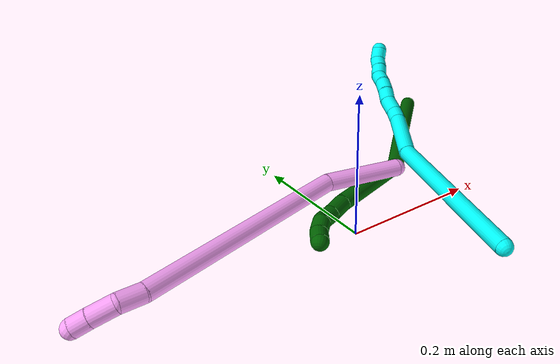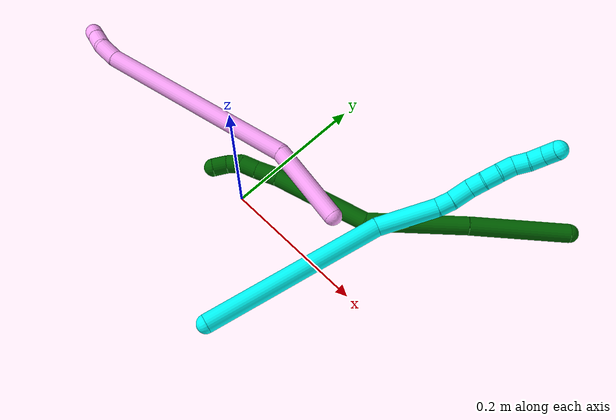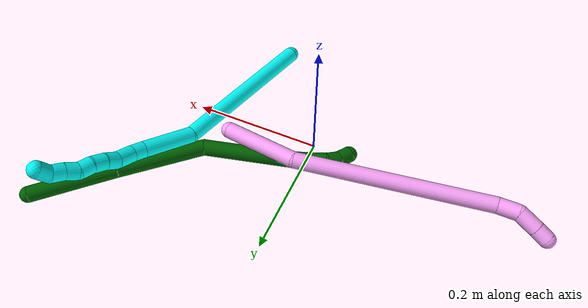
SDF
<sdf version="1.7">
 <world name="default">
  <model name="3">
   <static>0</static>
   <link name="3">
    <collision name="collision-cylinder-e_1_1_4">
     <pose>0.001699 0.014832 0.123157 -0.119851 0.013694 -0.000822</pose>
     <geometry><cylinder><radius>0.0125</radius><length>0.248117</length></cylinder></geometry>
     <surface>
      <friction><ode><mu>1.16</mu><mu2>1.16</mu2><slip1>0</slip1><slip2>0</slip2></ode></friction>
      <contact><ode><kp>1e+06</kp><kd>1</kd><max_vel>0</max_vel><min_depth>0.001</min_depth></ode></contact>
     </surface>
    </collision>
    <visual name="visual-cylinder-e_1_1_4">
     <pose>0.001699 0.014832 0.123157 -0.119851 0.013694 -0.000822</pose>
     <geometry><cylinder><radius>0.0125</radius><length>0.248117</length></cylinder></geometry>
     <material><ambient>0.003922 1 0.996078 1</ambient></material>
    </visual>
    <collision name="collision-cylinder-e_2_4_5">
     <pose>0.009093 0.021577 0.286051 0.200741 0.139539 0.014075</pose>
     <geometry><cylinder><radius>0.0125</radius><length>0.0819</length></cylinder></geometry>
     <surface>
      <friction><ode><mu>1.16</mu><mu2>1.16</mu2><slip1>0</slip1><slip2>0</slip2></ode></friction>
      <contact><ode><kp>1e+06</kp><kd>1</kd><max_vel>0</max_vel><min_depth>0.001</min_depth></ode></contact>
     </surface>
    </collision>
    <visual name="visual-cylinder-e_2_4_5">
     <pose>0.009093 0.021577 0.286051 0.200741 0.139539 0.014075</pose>
     <geometry><cylinder><radius>0.0125</radius><length>0.0819</length></cylinder></geometry>
     <material><ambient>0.003922 1 0.996078 1</ambient></material>
    </visual>
    <collision name="collision-cylinder-e_3_5_6">
     <pose>0.014687 0.011601 0.335737 0.187747 -0.010026 -0.000944</pose>
     <geometry><cylinder><radius>0.0125</radius><length>0.020253</length></cylinder></geometry>
     <surface>
      <friction><ode><mu>1.16</mu><mu2>1.16</mu2><slip1>0</slip1><slip2>0</slip2></ode></friction>
      <contact><ode><kp>1e+06</kp><kd>1</kd><max_vel>0</max_vel><min_depth>0.001</min_depth></ode></contact>
     </surface>
    </collision>
    <visual name="visual-cylinder-e_3_5_6">
     <pose>0.014687 0.011601 0.335737 0.187747 -0.010026 -0.000944</pose>
     <geometry><cylinder><radius>0.0125</radius><length>0.020253</length></cylinder></geometry>
     <material><ambient>0.003922 1 0.996078 1</ambient></material>
    </visual>
    <collision name="collision-cylinder-e_4_6_7">
     <pose>0.01268 0.007829 0.359215 0.138232 -0.138585 -0.009609</pose>
     <geometry><cylinder><radius>0.0125</radius><length>0.027586</length></cylinder></geometry>
     <surface>
      <friction><ode><mu>1.16</mu><mu2>1.16</mu2><slip1>0</slip1><slip2>0</slip2></ode></friction>
      <contact><ode><kp>1e+06</kp><kd>1</kd><max_vel>0</max_vel><min_depth>0.001</min_depth></ode></contact>
     </surface>
    </collision>
    <visual name="visual-cylinder-e_4_6_7">
     <pose>0.01268 0.007829 0.359215 0.138232 -0.138585 -0.009609</pose>
     <geometry><cylinder><radius>0.0125</radius><length>0.027586</length></cylinder></geometry>
     <material><ambient>0.003922 1 0.996078 1</ambient></material>
    </visual>
    <collision name="collision-cylinder-e_5_7_8">
     <pose>0.009633 0.001834 0.382022 0.417341 -0.112095 -0.02376</pose>
     <geometry><cylinder><radius>0.0125</radius><length>0.020423</length></cylinder></geometry>
     <surface>
      <friction><ode><mu>1.16</mu><mu2>1.16</mu2><slip1>0</slip1><slip2>0</slip2></ode></friction>
      <contact><ode><kp>1e+06</kp><kd>1</kd><max_vel>0</max_vel><min_depth>0.001</min_depth></ode></contact>
     </surface>
    </collision>
    <visual name="visual-cylinder-e_5_7_8">
     <pose>0.009633 0.001834 0.382022 0.417341 -0.112095 -0.02376</pose>
     <geometry><cylinder><radius>0.0125</radius><length>0.020423</length></cylinder></geometry>
     <material><ambient>0.003922 1 0.996078 1</ambient></material>
    </visual>
    <collision name="collision-cylinder-e_6_8_9">
     <pose>0.00785 -0.005087 0.401453 0.269768 -0.060691 -0.008239</pose>
     <geometry><cylinder><radius>0.0125</radius><length>0.02111</length></cylinder></geometry>
     <surface>
      <friction><ode><mu>1.16</mu><mu2>1.16</mu2><slip1>0</slip1><slip2>0</slip2></ode></friction>
      <contact><ode><kp>1e+06</kp><kd>1</kd><max_vel>0</max_vel><min_depth>0.001</min_depth></ode></contact>
     </surface>
    </collision>
    <visual name="visual-cylinder-e_6_8_9">
     <pose>0.00785 -0.005087 0.401453 0.269768 -0.060691 -0.008239</pose>
     <geometry><cylinder><radius>0.0125</radius><length>0.02111</length></cylinder></geometry>
     <material><ambient>0.003922 1 0.996078 1</ambient></material>
    </visual>
    <collision name="collision-cylinder-e_7_9_10">
     <pose>0.007336 -0.008687 0.421831 0.07737 0.012257 0.000474</pose>
     <geometry><cylinder><radius>0.0125</radius><length>0.020509</length></cylinder></geometry>
     <surface>
      <friction><ode><mu>1.16</mu><mu2>1.16</mu2><slip1>0</slip1><slip2>0</slip2></ode></friction>
      <contact><ode><kp>1e+06</kp><kd>1</kd><max_vel>0</max_vel><min_depth>0.001</min_depth></ode></contact>
     </surface>
    </collision>
    <visual name="visual-cylinder-e_7_9_10">
     <pose>0.007336 -0.008687 0.421831 0.07737 0.012257 0.000474</pose>
     <geometry><cylinder><radius>0.0125</radius><length>0.020509</length></cylinder></geometry>
     <material><ambient>0.003922 1 0.996078 1</ambient></material>
    </visual>
    <collision name="collision-cylinder-e_8_10_11">
     <pose>0.008651 -0.014121 0.440869 0.484607 0.118832 0.029403</pose>
     <geometry><cylinder><radius>0.0125</radius><length>0.020067</length></cylinder></geometry>
     <surface>
      <friction><ode><mu>1.16</mu><mu2>1.16</mu2><slip1>0</slip1><slip2>0</slip2></ode></friction>
      <contact><ode><kp>1e+06</kp><kd>1</kd><max_vel>0</max_vel><min_depth>0.001</min_depth></ode></contact>
     </surface>
    </collision>
    <visual name="visual-cylinder-e_8_10_11">
     <pose>0.008651 -0.014121 0.440869 0.484607 0.118832 0.029403</pose>
     <geometry><cylinder><radius>0.0125</radius><length>0.020067</length></cylinder></geometry>
     <material><ambient>0.003922 1 0.996078 1</ambient></material>
    </visual>
    <collision name="collision-cylinder-e_9_11_12">
     <pose>0.010159 -0.022011 0.459138 0.331031 0.031874 0.005325</pose>
     <geometry><cylinder><radius>0.0125</radius><length>0.020002</length></cylinder></geometry>
     <surface>
      <friction><ode><mu>1.16</mu><mu2>1.16</mu2><slip1>0</slip1><slip2>0</slip2></ode></friction>
      <contact><ode><kp>1e+06</kp><kd>1</kd><max_vel>0</max_vel><min_depth>0.001</min_depth></ode></contact>
     </surface>
    </collision>
    <visual name="visual-cylinder-e_9_11_12">
     <pose>0.010159 -0.022011 0.459138 0.331031 0.031874 0.005325</pose>
     <geometry><cylinder><radius>0.0125</radius><length>0.020002</length></cylinder></geometry>
     <material><ambient>0.003922 1 0.996078 1</ambient></material>
    </visual>
    <collision name="collision-cylinder-e_10_12_2">
     <pose>0.009517 -0.032516 0.47543 0.815049 -0.096107 -0.041515</pose>
     <geometry><cylinder><radius>0.0125</radius><length>0.020033</length></cylinder></geometry>
     <surface>
      <friction><ode><mu>1.16</mu><mu2>1.16</mu2><slip1>0</slip1><slip2>0</slip2></ode></friction>
      <contact><ode><kp>1e+06</kp><kd>1</kd><max_vel>0</max_vel><min_depth>0.001</min_depth></ode></contact>
     </surface>
    </collision>
    <visual name="visual-cylinder-e_10_12_2">
     <pose>0.009517 -0.032516 0.47543 0.815049 -0.096107 -0.041515</pose>
     <geometry><cylinder><radius>0.0125</radius><length>0.020033</length></cylinder></geometry>
     <material><ambient>0.003922 1 0.996078 1</ambient></material>
    </visual>
    <collision name="collision-sphere-2">
     <pose>0.008555 -0.039772 0.482268 0 -0 0</pose>
     <geometry><sphere><radius>0.0125</radius></sphere></geometry>
     <surface>
      <friction><ode><mu>1.16</mu><mu2>1.16</mu2><slip1>0</slip1><slip2>0</slip2></ode></friction>
      <contact><ode><kp>1e+06</kp><kd>1</kd><max_vel>0</max_vel><min_depth>0.001</min_depth></ode></contact>
     </surface>
    </collision>
    <visual name="visual-sphere-2">
     <pose>0.008555 -0.039772 0.482268 0 -0 0</pose>
     <geometry><sphere><radius>0.0125</radius></sphere></geometry>
     <material><ambient>0.003922 1 0.996078 1</ambient></material>
    </visual>
    <collision name="collision-sphere-12">
     <pose>0.010478 -0.02526 0.468592 0 -0 0</pose>
     <geometry><sphere><radius>0.0125</radius></sphere></geometry>
     <surface>
      <friction><ode><mu>1.16</mu><mu2>1.16</mu2><slip1>0</slip1><slip2>0</slip2></ode></friction>
      <contact><ode><kp>1e+06</kp><kd>1</kd><max_vel>0</max_vel><min_depth>0.001</min_depth></ode></contact>
     </surface>
    </collision>
    <visual name="visual-sphere-12">
     <pose>0.010478 -0.02526 0.468592 0 -0 0</pose>
     <geometry><sphere><radius>0.0125</radius></sphere></geometry>
     <material><ambient>0.003922 1 0.996078 1</ambient></material>
    </visual>
    <collision name="collision-sphere-11">
     <pose>0.00984 -0.018763 0.449685 0 -0 0</pose>
     <geometry><sphere><radius>0.0125</radius></sphere></geometry>
     <surface>
      <friction><ode><mu>1.16</mu><mu2>1.16</mu2><slip1>0</slip1><slip2>0</slip2></ode></friction>
      <contact><ode><kp>1e+06</kp><kd>1</kd><max_vel>0</max_vel><min_depth>0.001</min_depth></ode></contact>
     </surface>
    </collision>
    <visual name="visual-sphere-11">
     <pose>0.00984 -0.018763 0.449685 0 -0 0</pose>
     <geometry><sphere><radius>0.0125</radius></sphere></geometry>
     <material><ambient>0.003922 1 0.996078 1</ambient></material>
    </visual>
    <collision name="collision-sphere-10">
     <pose>0.007461 -0.00948 0.432054 0 -0 0</pose>
     <geometry><sphere><radius>0.0125</radius></sphere></geometry>
     <surface>
      <friction><ode><mu>1.16</mu><mu2>1.16</mu2><slip1>0</slip1><slip2>0</slip2></ode></friction>
      <contact><ode><kp>1e+06</kp><kd>1</kd><max_vel>0</max_vel><min_depth>0.001</min_depth></ode></contact>
     </surface>
    </collision>
    <visual name="visual-sphere-10">
     <pose>0.007461 -0.00948 0.432054 0 -0 0</pose>
     <geometry><sphere><radius>0.0125</radius></sphere></geometry>
     <material><ambient>0.003922 1 0.996078 1</ambient></material>
    </visual>
    <collision name="collision-sphere-9">
     <pose>0.00721 -0.007895 0.411608 0 -0 0</pose>
     <geometry><sphere><radius>0.0125</radius></sphere></geometry>
     <surface>
      <friction><ode><mu>1.16</mu><mu2>1.16</mu2><slip1>0</slip1><slip2>0</slip2></ode></friction>
      <contact><ode><kp>1e+06</kp><kd>1</kd><max_vel>0</max_vel><min_depth>0.001</min_depth></ode></contact>
     </surface>
    </collision>
    <visual name="visual-sphere-9">
     <pose>0.00721 -0.007895 0.411608 0 -0 0</pose>
     <geometry><sphere><radius>0.0125</radius></sphere></geometry>
     <material><ambient>0.003922 1 0.996078 1</ambient></material>
    </visual>
    <collision name="collision-sphere-4">
     <pose>0.003398 0.029663 0.246314 0 -0 0</pose>
     <geometry><sphere><radius>0.0125</radius></sphere></geometry>
     <surface>
      <friction><ode><mu>1.16</mu><mu2>1.16</mu2><slip1>0</slip1><slip2>0</slip2></ode></friction>
      <contact><ode><kp>1e+06</kp><kd>1</kd><max_vel>0</max_vel><min_depth>0.001</min_depth></ode></contact>
     </surface>
    </collision>
    <visual name="visual-sphere-4">
     <pose>0.003398 0.029663 0.246314 0 -0 0</pose>
     <geometry><sphere><radius>0.0125</radius></sphere></geometry>
     <material><ambient>0.003922 1 0.996078 1</ambient></material>
    </visual>
    <collision name="collision-sphere-1">
     <geometry><sphere><radius>0.0125</radius></sphere></geometry>
     <surface>
      <friction><ode><mu>1.16</mu><mu2>1.16</mu2><slip1>0</slip1><slip2>0</slip2></ode></friction>
      <contact><ode><kp>1e+06</kp><kd>1</kd><max_vel>0</max_vel><min_depth>0.001</min_depth></ode></contact>
     </surface>
    </collision>
    <visual name="visual-sphere-1">
     <geometry><sphere><radius>0.0125</radius></sphere></geometry>
     <material><ambient>0.003922 1 0.996078 1</ambient></material>
    </visual>
    <collision name="collision-sphere-8">
     <pose>0.00849 -0.002279 0.391299 0 -0 0</pose>
     <geometry><sphere><radius>0.0125</radius></sphere></geometry>
     <surface>
      <friction><ode><mu>1.16</mu><mu2>1.16</mu2><slip1>0</slip1><slip2>0</slip2></ode></friction>
      <contact><ode><kp>1e+06</kp><kd>1</kd><max_vel>0</max_vel><min_depth>0.001</min_depth></ode></contact>
     </surface>
    </collision>
    <visual name="visual-sphere-8">
     <pose>0.00849 -0.002279 0.391299 0 -0 0</pose>
     <geometry><sphere><radius>0.0125</radius></sphere></geometry>
     <material><ambient>0.003922 1 0.996078 1</ambient></material>
    </visual>
    <collision name="collision-sphere-5">
     <pose>0.014789 0.013491 0.325789 0 -0 0</pose>
     <geometry><sphere><radius>0.0125</radius></sphere></geometry>
     <surface>
      <friction><ode><mu>1.16</mu><mu2>1.16</mu2><slip1>0</slip1><slip2>0</slip2></ode></friction>
      <contact><ode><kp>1e+06</kp><kd>1</kd><max_vel>0</max_vel><min_depth>0.001</min_depth></ode></contact>
     </surface>
    </collision>
    <visual name="visual-sphere-5">
     <pose>0.014789 0.013491 0.325789 0 -0 0</pose>
     <geometry><sphere><radius>0.0125</radius></sphere></geometry>
     <material><ambient>0.003922 1 0.996078 1</ambient></material>
    </visual>
    <collision name="collision-sphere-6">
     <pose>0.014586 0.009712 0.345685 0 -0 0</pose>
     <geometry><sphere><radius>0.0125</radius></sphere></geometry>
     <surface>
      <friction><ode><mu>1.16</mu><mu2>1.16</mu2><slip1>0</slip1><slip2>0</slip2></ode></friction>
      <contact><ode><kp>1e+06</kp><kd>1</kd><max_vel>0</max_vel><min_depth>0.001</min_depth></ode></contact>
     </surface>
    </collision>
    <visual name="visual-sphere-6">
     <pose>0.014586 0.009712 0.345685 0 -0 0</pose>
     <geometry><sphere><radius>0.0125</radius></sphere></geometry>
     <material><ambient>0.003922 1 0.996078 1</ambient></material>
    </visual>
    <collision name="collision-sphere-7">
     <pose>0.010775 0.005947 0.372746 0 -0 0</pose>
     <geometry><sphere><radius>0.0125</radius></sphere></geometry>
     <surface>
      <friction><ode><mu>1.16</mu><mu2>1.16</mu2><slip1>0</slip1><slip2>0</slip2></ode></friction>
      <contact><ode><kp>1e+06</kp><kd>1</kd><max_vel>0</max_vel><min_depth>0.001</min_depth></ode></contact>
     </surface>
    </collision>
    <visual name="visual-sphere-7">
     <pose>0.010775 0.005947 0.372746 0 -0 0</pose>
     <geometry><sphere><radius>0.0125</radius></sphere></geometry>
     <material><ambient>0.003922 1 0.996078 1</ambient></material>
    </visual>
    <inertial>
     <pose>0.005788 0.00855 0.246354 0 -0 0</pose>
     <mass>0.5</mass>
     <inertia>
      <ixx>0.001344</ixx>
      <ixy>0</ixy>
      <ixz>0</ixz>
      <iyy>0.00133</iyy>
      <iyz>0</iyz>
      <izz>-0.000126</izz>
     </inertia>
    </inertial>
   </link>
   <pose>0.109215 -0.156 0.021506 -1.36359 0.6422 -0.183805</pose>
  </model>
  <model name="4">
   <static>0</static>
   <link name="4">
    <collision name="collision-cylinder-e_1_1_4">
     <pose>-0.037021 -0.034966 0.027903 0.897262 -0.69133 -0.343292</pose>
     <geometry><cylinder><radius>0.0125</radius><length>0.116134</length></cylinder></geometry>
     <surface>
      <friction><ode><mu>1.16</mu><mu2>1.16</mu2><slip1>0</slip1><slip2>0</slip2></ode></friction>
      <contact><ode><kp>1e+06</kp><kd>1</kd><max_vel>0</max_vel><min_depth>0.001</min_depth></ode></contact>
     </surface>
    </collision>
    <visual name="visual-cylinder-e_1_1_4">
     <pose>-0.037021 -0.034966 0.027903 0.897262 -0.69133 -0.343292</pose>
     <geometry><cylinder><radius>0.0125</radius><length>0.116134</length></cylinder></geometry>
     <material><ambient>1 0.65098 0.996078 1</ambient></material>
    </visual>
    <collision name="collision-cylinder-e_2_4_5">
     <pose>-0.198559 -0.118253 0.123365 0.620892 -0.982517 -0.339967</pose>
     <geometry><cylinder><radius>0.0125</radius><length>0.299356</length></cylinder></geometry>
     <surface>
      <friction><ode><mu>1.16</mu><mu2>1.16</mu2><slip1>0</slip1><slip2>0</slip2></ode></friction>
      <contact><ode><kp>1e+06</kp><kd>1</kd><max_vel>0</max_vel><min_depth>0.001</min_depth></ode></contact>
     </surface>
    </collision>
    <visual name="visual-cylinder-e_2_4_5">
     <pose>-0.198559 -0.118253 0.123365 0.620892 -0.982517 -0.339967</pose>
     <geometry><cylinder><radius>0.0125</radius><length>0.299356</length></cylinder></geometry>
     <material><ambient>1 0.65098 0.996078 1</ambient></material>
    </visual>
    <collision name="collision-cylinder-e_3_5_6">
     <pose>-0.334685 -0.174289 0.198519 0.793233 -0.820275 -0.360246</pose>
     <geometry><cylinder><radius>0.0125</radius><length>0.031747</length></cylinder></geometry>
     <surface>
      <friction><ode><mu>1.16</mu><mu2>1.16</mu2><slip1>0</slip1><slip2>0</slip2></ode></friction>
      <contact><ode><kp>1e+06</kp><kd>1</kd><max_vel>0</max_vel><min_depth>0.001</min_depth></ode></contact>
     </surface>
    </collision>
    <visual name="visual-cylinder-e_3_5_6">
     <pose>-0.334685 -0.174289 0.198519 0.793233 -0.820275 -0.360246</pose>
     <geometry><cylinder><radius>0.0125</radius><length>0.031747</length></cylinder></geometry>
     <material><ambient>1 0.65098 0.996078 1</ambient></material>
    </visual>
    <collision name="collision-cylinder-e_4_6_7">
     <pose>-0.352919 -0.188741 0.218808 0.48788 -0.43197 -0.109111</pose>
     <geometry><cylinder><radius>0.0125</radius><length>0.03165</length></cylinder></geometry>
     <surface>
      <friction><ode><mu>1.16</mu><mu2>1.16</mu2><slip1>0</slip1><slip2>0</slip2></ode></friction>
      <contact><ode><kp>1e+06</kp><kd>1</kd><max_vel>0</max_vel><min_depth>0.001</min_depth></ode></contact>
     </surface>
    </collision>
    <visual name="visual-cylinder-e_4_6_7">
     <pose>-0.352919 -0.188741 0.218808 0.48788 -0.43197 -0.109111</pose>
     <geometry><cylinder><radius>0.0125</radius><length>0.03165</length></cylinder></geometry>
     <material><ambient>1 0.65098 0.996078 1</ambient></material>
    </visual>
    <collision name="collision-cylinder-e_5_7_2">
     <pose>-0.363776 -0.199624 0.240239 0.443129 -0.412514 -0.094195</pose>
     <geometry><cylinder><radius>0.0125</radius><length>0.021114</length></cylinder></geometry>
     <surface>
      <friction><ode><mu>1.16</mu><mu2>1.16</mu2><slip1>0</slip1><slip2>0</slip2></ode></friction>
      <contact><ode><kp>1e+06</kp><kd>1</kd><max_vel>0</max_vel><min_depth>0.001</min_depth></ode></contact>
     </surface>
    </collision>
    <visual name="visual-cylinder-e_5_7_2">
     <pose>-0.363776 -0.199624 0.240239 0.443129 -0.412514 -0.094195</pose>
     <geometry><cylinder><radius>0.0125</radius><length>0.021114</length></cylinder></geometry>
     <material><ambient>1 0.65098 0.996078 1</ambient></material>
    </visual>
    <collision name="collision-sphere-2">
     <pose>-0.368009 -0.203771 0.248977 0 -0 0</pose>
     <geometry><sphere><radius>0.0125</radius></sphere></geometry>
     <surface>
      <friction><ode><mu>1.16</mu><mu2>1.16</mu2><slip1>0</slip1><slip2>0</slip2></ode></friction>
      <contact><ode><kp>1e+06</kp><kd>1</kd><max_vel>0</max_vel><min_depth>0.001</min_depth></ode></contact>
     </surface>
    </collision>
    <visual name="visual-sphere-2">
     <pose>-0.368009 -0.203771 0.248977 0 -0 0</pose>
     <geometry><sphere><radius>0.0125</radius></sphere></geometry>
     <material><ambient>1 0.65098 0.996078 1</ambient></material>
    </visual>
    <collision name="collision-sphere-7">
     <pose>-0.359544 -0.195477 0.231502 0 -0 0</pose>
     <geometry><sphere><radius>0.0125</radius></sphere></geometry>
     <surface>
      <friction><ode><mu>1.16</mu><mu2>1.16</mu2><slip1>0</slip1><slip2>0</slip2></ode></friction>
      <contact><ode><kp>1e+06</kp><kd>1</kd><max_vel>0</max_vel><min_depth>0.001</min_depth></ode></contact>
     </surface>
    </collision>
    <visual name="visual-sphere-7">
     <pose>-0.359544 -0.195477 0.231502 0 -0 0</pose>
     <geometry><sphere><radius>0.0125</radius></sphere></geometry>
     <material><ambient>1 0.65098 0.996078 1</ambient></material>
    </visual>
    <collision name="collision-sphere-6">
     <pose>-0.346293 -0.182004 0.206113 0 -0 0</pose>
     <geometry><sphere><radius>0.0125</radius></sphere></geometry>
     <surface>
      <friction><ode><mu>1.16</mu><mu2>1.16</mu2><slip1>0</slip1><slip2>0</slip2></ode></friction>
      <contact><ode><kp>1e+06</kp><kd>1</kd><max_vel>0</max_vel><min_depth>0.001</min_depth></ode></contact>
     </surface>
    </collision>
    <visual name="visual-sphere-6">
     <pose>-0.346293 -0.182004 0.206113 0 -0 0</pose>
     <geometry><sphere><radius>0.0125</radius></sphere></geometry>
     <material><ambient>1 0.65098 0.996078 1</ambient></material>
    </visual>
    <collision name="collision-sphere-5">
     <pose>-0.323076 -0.166574 0.190924 0 -0 0</pose>
     <geometry><sphere><radius>0.0125</radius></sphere></geometry>
     <surface>
      <friction><ode><mu>1.16</mu><mu2>1.16</mu2><slip1>0</slip1><slip2>0</slip2></ode></friction>
      <contact><ode><kp>1e+06</kp><kd>1</kd><max_vel>0</max_vel><min_depth>0.001</min_depth></ode></contact>
     </surface>
    </collision>
    <visual name="visual-sphere-5">
     <pose>-0.323076 -0.166574 0.190924 0 -0 0</pose>
     <geometry><sphere><radius>0.0125</radius></sphere></geometry>
     <material><ambient>1 0.65098 0.996078 1</ambient></material>
    </visual>
    <collision name="collision-sphere-1">
     <geometry><sphere><radius>0.0125</radius></sphere></geometry>
     <surface>
      <friction><ode><mu>1.16</mu><mu2>1.16</mu2><slip1>0</slip1><slip2>0</slip2></ode></friction>
      <contact><ode><kp>1e+06</kp><kd>1</kd><max_vel>0</max_vel><min_depth>0.001</min_depth></ode></contact>
     </surface>
    </collision>
    <visual name="visual-sphere-1">
     <geometry><sphere><radius>0.0125</radius></sphere></geometry>
     <material><ambient>1 0.65098 0.996078 1</ambient></material>
    </visual>
    <collision name="collision-sphere-4">
     <pose>-0.074043 -0.069931 0.055807 0 -0 0</pose>
     <geometry><sphere><radius>0.0125</radius></sphere></geometry>
     <surface>
      <friction><ode><mu>1.16</mu><mu2>1.16</mu2><slip1>0</slip1><slip2>0</slip2></ode></friction>
      <contact><ode><kp>1e+06</kp><kd>1</kd><max_vel>0</max_vel><min_depth>0.001</min_depth></ode></contact>
     </surface>
    </collision>
    <visual name="visual-sphere-4">
     <pose>-0.074043 -0.069931 0.055807 0 -0 0</pose>
     <geometry><sphere><radius>0.0125</radius></sphere></geometry>
     <material><ambient>1 0.65098 0.996078 1</ambient></material>
    </visual>
    <inertial>
     <pose>-0.18643 -0.110364 0.116941 0 -0 0</pose>
     <mass>0.5</mass>
     <inertia><ixx>0.0008</ixx><ixy>0</ixy><ixz>0</ixz><iyy>0.001728</iyy><iyz>0</iyz><izz>0.002791</izz></inertia>
    </inertial>
   </link>
   <pose>0.11983 0.053995 0.03946 -2.54884 0.1761 0.733874</pose>
  </model>
  <model name="6">
   <static>0</static>
   <link name="6">
    <collision name="collision-cylinder-e_1_1_4">
     <pose>-0.028857 -0.015373 -0.058155 2.88315 -0.447298 -2.10351</pose>
     <geometry><cylinder><radius>0.0125</radius><length>0.133433</length></cylinder></geometry>
     <surface>
      <friction><ode><mu>1.16</mu><mu2>1.16</mu2><slip1>0</slip1><slip2>0</slip2></ode></friction>
      <contact><ode><kp>1e+06</kp><kd>1</kd><max_vel>0</max_vel><min_depth>0.001</min_depth></ode></contact>
     </surface>
    </collision>
    <visual name="visual-cylinder-e_1_1_4">
     <pose>-0.028857 -0.015373 -0.058155 2.88315 -0.447298 -2.10351</pose>
     <geometry><cylinder><radius>0.0125</radius><length>0.133433</length></cylinder></geometry>
     <material><ambient>0 0.392157 0.003922 1</ambient></material>
    </visual>
    <collision name="collision-cylinder-e_2_4_5">
     <pose>-0.083805 -0.045717 -0.176837 2.89913 -0.396317 -2.05086</pose>
     <geometry><cylinder><radius>0.0125</radius><length>0.135179</length></cylinder></geometry>
     <surface>
      <friction><ode><mu>1.16</mu><mu2>1.16</mu2><slip1>0</slip1><slip2>0</slip2></ode></friction>
      <contact><ode><kp>1e+06</kp><kd>1</kd><max_vel>0</max_vel><min_depth>0.001</min_depth></ode></contact>
     </surface>
    </collision>
    <visual name="visual-cylinder-e_2_4_5">
     <pose>-0.083805 -0.045717 -0.176837 2.89913 -0.396317 -2.05086</pose>
     <geometry><cylinder><radius>0.0125</radius><length>0.135179</length></cylinder></geometry>
     <material><ambient>0 0.392157 0.003922 1</ambient></material>
    </visual>
    <collision name="collision-cylinder-e_3_5_6">
     <pose>-0.146889 -0.045251 -0.291977 -2.86614 -0.577655 2.26866</pose>
     <geometry><cylinder><radius>0.0125</radius><length>0.135489</length></cylinder></geometry>
     <surface>
      <friction><ode><mu>1.16</mu><mu2>1.16</mu2><slip1>0</slip1><slip2>0</slip2></ode></friction>
      <contact><ode><kp>1e+06</kp><kd>1</kd><max_vel>0</max_vel><min_depth>0.001</min_depth></ode></contact>
     </surface>
    </collision>
    <visual name="visual-cylinder-e_3_5_6">
     <pose>-0.146889 -0.045251 -0.291977 -2.86614 -0.577655 2.26866</pose>
     <geometry><cylinder><radius>0.0125</radius><length>0.135489</length></cylinder></geometry>
     <material><ambient>0 0.392157 0.003922 1</ambient></material>
    </visual>
    <collision name="collision-cylinder-e_4_6_7">
     <pose>-0.191584 -0.028001 -0.360004 -3.00711 -0.517369 2.6432</pose>
     <geometry><cylinder><radius>0.0125</radius><length>0.031148</length></cylinder></geometry>
     <surface>
      <friction><ode><mu>1.16</mu><mu2>1.16</mu2><slip1>0</slip1><slip2>0</slip2></ode></friction>
      <contact><ode><kp>1e+06</kp><kd>1</kd><max_vel>0</max_vel><min_depth>0.001</min_depth></ode></contact>
     </surface>
    </collision>
    <visual name="visual-cylinder-e_4_6_7">
     <pose>-0.191584 -0.028001 -0.360004 -3.00711 -0.517369 2.6432</pose>
     <geometry><cylinder><radius>0.0125</radius><length>0.031148</length></cylinder></geometry>
     <material><ambient>0 0.392157 0.003922 1</ambient></material>
    </visual>
    <collision name="collision-cylinder-e_5_7_8">
     <pose>-0.20599 -0.024701 -0.383177 -2.99063 -0.596461 2.65913</pose>
     <geometry><cylinder><radius>0.0125</radius><length>0.023865</length></cylinder></geometry>
     <surface>
      <friction><ode><mu>1.16</mu><mu2>1.16</mu2><slip1>0</slip1><slip2>0</slip2></ode></friction>
      <contact><ode><kp>1e+06</kp><kd>1</kd><max_vel>0</max_vel><min_depth>0.001</min_depth></ode></contact>
     </surface>
    </collision>
    <visual name="visual-cylinder-e_5_7_8">
     <pose>-0.20599 -0.024701 -0.383177 -2.99063 -0.596461 2.65913</pose>
     <geometry><cylinder><radius>0.0125</radius><length>0.023865</length></cylinder></geometry>
     <material><ambient>0 0.392157 0.003922 1</ambient></material>
    </visual>
    <collision name="collision-cylinder-e_6_8_9">
     <pose>-0.21492 -0.024461 -0.402832 3.01648 -0.219738 -2.10877</pose>
     <geometry><cylinder><radius>0.0125</radius><length>0.020437</length></cylinder></geometry>
     <surface>
      <friction><ode><mu>1.16</mu><mu2>1.16</mu2><slip1>0</slip1><slip2>0</slip2></ode></friction>
      <contact><ode><kp>1e+06</kp><kd>1</kd><max_vel>0</max_vel><min_depth>0.001</min_depth></ode></contact>
     </surface>
    </collision>
    <visual name="visual-cylinder-e_6_8_9">
     <pose>-0.21492 -0.024461 -0.402832 3.01648 -0.219738 -2.10877</pose>
     <geometry><cylinder><radius>0.0125</radius><length>0.020437</length></cylinder></geometry>
     <material><ambient>0 0.392157 0.003922 1</ambient></material>
    </visual>
    <collision name="collision-cylinder-e_7_9_2">
     <pose>-0.219184 -0.029878 -0.421836 2.71204 -0.200494 -0.864091</pose>
     <geometry><cylinder><radius>0.0125</radius><length>0.020449</length></cylinder></geometry>
     <surface>
      <friction><ode><mu>1.16</mu><mu2>1.16</mu2><slip1>0</slip1><slip2>0</slip2></ode></friction>
      <contact><ode><kp>1e+06</kp><kd>1</kd><max_vel>0</max_vel><min_depth>0.001</min_depth></ode></contact>
     </surface>
    </collision>
    <visual name="visual-cylinder-e_7_9_2">
     <pose>-0.219184 -0.029878 -0.421836 2.71204 -0.200494 -0.864091</pose>
     <geometry><cylinder><radius>0.0125</radius><length>0.020449</length></cylinder></geometry>
     <material><ambient>0 0.392157 0.003922 1</ambient></material>
    </visual>
    <collision name="collision-sphere-2">
     <pose>-0.22122 -0.034051 -0.430945 0 -0 0</pose>
     <geometry><sphere><radius>0.0125</radius></sphere></geometry>
     <surface>
      <friction><ode><mu>1.16</mu><mu2>1.16</mu2><slip1>0</slip1><slip2>0</slip2></ode></friction>
      <contact><ode><kp>1e+06</kp><kd>1</kd><max_vel>0</max_vel><min_depth>0.001</min_depth></ode></contact>
     </surface>
    </collision>
    <visual name="visual-sphere-2">
     <pose>-0.22122 -0.034051 -0.430945 0 -0 0</pose>
     <geometry><sphere><radius>0.0125</radius></sphere></geometry>
     <material><ambient>0 0.392157 0.003922 1</ambient></material>
    </visual>
    <collision name="collision-sphere-9">
     <pose>-0.217147 -0.025705 -0.412727 0 -0 0</pose>
     <geometry><sphere><radius>0.0125</radius></sphere></geometry>
     <surface>
      <friction><ode><mu>1.16</mu><mu2>1.16</mu2><slip1>0</slip1><slip2>0</slip2></ode></friction>
      <contact><ode><kp>1e+06</kp><kd>1</kd><max_vel>0</max_vel><min_depth>0.001</min_depth></ode></contact>
     </surface>
    </collision>
    <visual name="visual-sphere-9">
     <pose>-0.217147 -0.025705 -0.412727 0 -0 0</pose>
     <geometry><sphere><radius>0.0125</radius></sphere></geometry>
     <material><ambient>0 0.392157 0.003922 1</ambient></material>
    </visual>
    <collision name="collision-sphere-4">
     <pose>-0.057714 -0.030746 -0.11631 0 -0 0</pose>
     <geometry><sphere><radius>0.0125</radius></sphere></geometry>
     <surface>
      <friction><ode><mu>1.16</mu><mu2>1.16</mu2><slip1>0</slip1><slip2>0</slip2></ode></friction>
      <contact><ode><kp>1e+06</kp><kd>1</kd><max_vel>0</max_vel><min_depth>0.001</min_depth></ode></contact>
     </surface>
    </collision>
    <visual name="visual-sphere-4">
     <pose>-0.057714 -0.030746 -0.11631 0 -0 0</pose>
     <geometry><sphere><radius>0.0125</radius></sphere></geometry>
     <material><ambient>0 0.392157 0.003922 1</ambient></material>
    </visual>
    <collision name="collision-sphere-1">
     <geometry><sphere><radius>0.0125</radius></sphere></geometry>
     <surface>
      <friction><ode><mu>1.16</mu><mu2>1.16</mu2><slip1>0</slip1><slip2>0</slip2></ode></friction>
      <contact><ode><kp>1e+06</kp><kd>1</kd><max_vel>0</max_vel><min_depth>0.001</min_depth></ode></contact>
     </surface>
    </collision>
    <visual name="visual-sphere-1">
     <geometry><sphere><radius>0.0125</radius></sphere></geometry>
     <material><ambient>0 0.392157 0.003922 1</ambient></material>
    </visual>
    <collision name="collision-sphere-8">
     <pose>-0.212693 -0.023216 -0.392937 0 -0 0</pose>
     <geometry><sphere><radius>0.0125</radius></sphere></geometry>
     <surface>
      <friction><ode><mu>1.16</mu><mu2>1.16</mu2><slip1>0</slip1><slip2>0</slip2></ode></friction>
      <contact><ode><kp>1e+06</kp><kd>1</kd><max_vel>0</max_vel><min_depth>0.001</min_depth></ode></contact>
     </surface>
    </collision>
    <visual name="visual-sphere-8">
     <pose>-0.212693 -0.023216 -0.392937 0 -0 0</pose>
     <geometry><sphere><radius>0.0125</radius></sphere></geometry>
     <material><ambient>0 0.392157 0.003922 1</ambient></material>
    </visual>
    <collision name="collision-sphere-5">
     <pose>-0.109896 -0.060687 -0.237364 0 -0 0</pose>
     <geometry><sphere><radius>0.0125</radius></sphere></geometry>
     <surface>
      <friction><ode><mu>1.16</mu><mu2>1.16</mu2><slip1>0</slip1><slip2>0</slip2></ode></friction>
      <contact><ode><kp>1e+06</kp><kd>1</kd><max_vel>0</max_vel><min_depth>0.001</min_depth></ode></contact>
     </surface>
    </collision>
    <visual name="visual-sphere-5">
     <pose>-0.109896 -0.060687 -0.237364 0 -0 0</pose>
     <geometry><sphere><radius>0.0125</radius></sphere></geometry>
     <material><ambient>0 0.392157 0.003922 1</ambient></material>
    </visual>
    <collision name="collision-sphere-6">
     <pose>-0.183881 -0.029815 -0.34659 0 -0 0</pose>
     <geometry><sphere><radius>0.0125</radius></sphere></geometry>
     <surface>
      <friction><ode><mu>1.16</mu><mu2>1.16</mu2><slip1>0</slip1><slip2>0</slip2></ode></friction>
      <contact><ode><kp>1e+06</kp><kd>1</kd><max_vel>0</max_vel><min_depth>0.001</min_depth></ode></contact>
     </surface>
    </collision>
    <visual name="visual-sphere-6">
     <pose>-0.183881 -0.029815 -0.34659 0 -0 0</pose>
     <geometry><sphere><radius>0.0125</radius></sphere></geometry>
     <material><ambient>0 0.392157 0.003922 1</ambient></material>
    </visual>
    <collision name="collision-sphere-7">
     <pose>-0.199287 -0.026186 -0.373418 0 -0 0</pose>
     <geometry><sphere><radius>0.0125</radius></sphere></geometry>
     <surface>
      <friction><ode><mu>1.16</mu><mu2>1.16</mu2><slip1>0</slip1><slip2>0</slip2></ode></friction>
      <contact><ode><kp>1e+06</kp><kd>1</kd><max_vel>0</max_vel><min_depth>0.001</min_depth></ode></contact>
     </surface>
    </collision>
    <visual name="visual-sphere-7">
     <pose>-0.199287 -0.026186 -0.373418 0 -0 0</pose>
     <geometry><sphere><radius>0.0125</radius></sphere></geometry>
     <material><ambient>0 0.392157 0.003922 1</ambient></material>
    </visual>
    <inertial>
     <pose>-0.109677 -0.03387 -0.216882 0 -0 0</pose>
     <mass>0.5</mass>
     <inertia>
      <ixx>-0.000513</ixx>
      <ixy>0</ixy>
      <ixz>0</ixz>
      <iyy>0.000195</iyy>
      <iyz>0</iyz>
      <izz>0.000301</izz>
     </inertia>
    </inertial>
   </link>
   <pose>0.346473 0.267978 0.011495 -0.739392 0.928125 -0.1251</pose>
  </model>
 </world>
</sdf>
